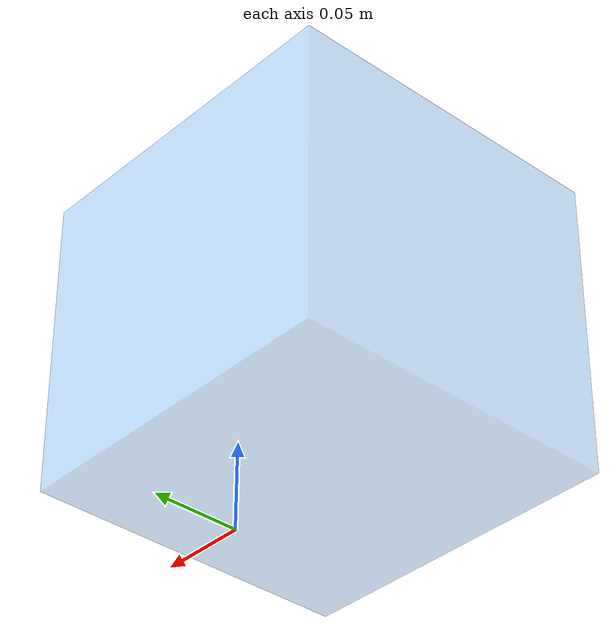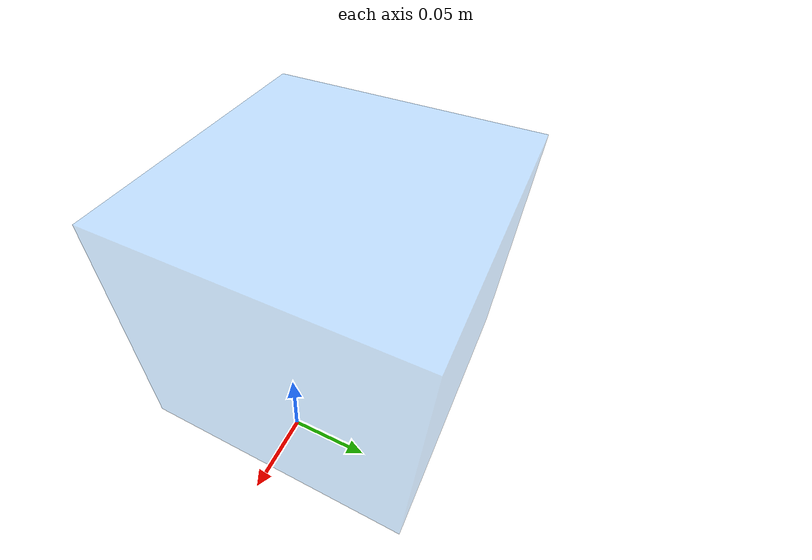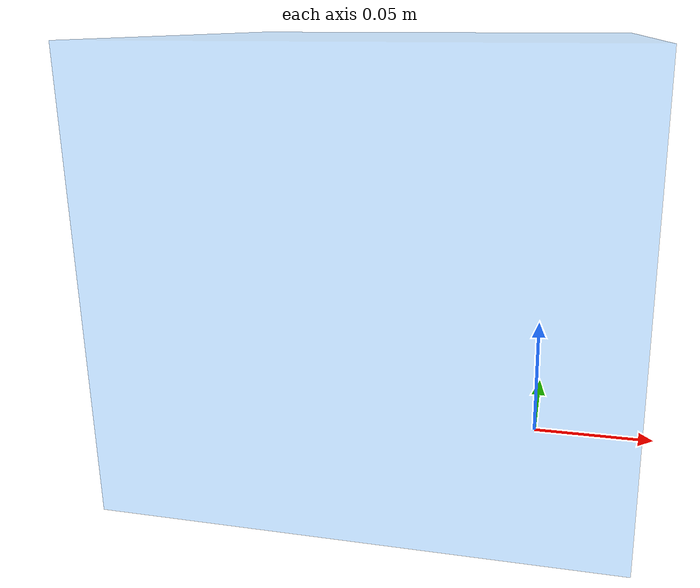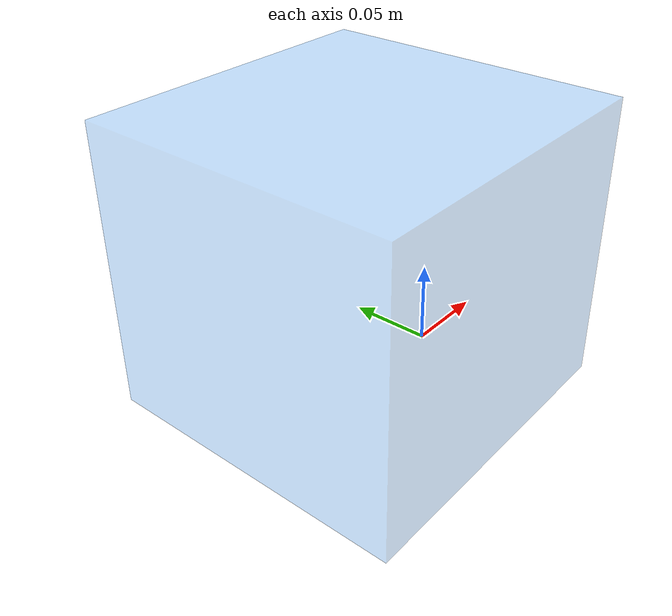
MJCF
<mujoco model="innate_sim">

  <option timestep="0.005" gravity="0 0 -9.81"/>

  <default>
    <default class="collision">
      <geom group="3" type="mesh" friction="0.9 0.01 0.001" condim="6" margin="0.03" solref="0.01 1"
            contype="0" conaffinity="0"/>
    </default>
  </default>

  <asset>
    <mesh file="apartment_collision_0.obj"/>
    <mesh file="apartment_collision_1.obj"/>
    <mesh file="apartment_collision_2.obj"/>
    <mesh file="apartment_collision_3.obj"/>
    <mesh file="apartment_collision_4.obj"/>
    <mesh file="apartment_collision_5.obj"/>
    <mesh file="apartment_collision_6.obj"/>
    <mesh file="apartment_collision_7.obj"/>
    <mesh file="apartment_collision_8.obj"/>
    <mesh file="apartment_collision_9.obj"/>
    <mesh file="apartment_collision_10.obj"/>
    <mesh file="apartment_collision_11.obj"/>
    <mesh file="apartment_collision_12.obj"/>
    <mesh file="apartment_collision_13.obj"/>
    <mesh file="apartment_collision_14.obj"/>
    <mesh file="apartment_collision_15.obj"/>
    <mesh file="apartment_collision_16.obj"/>
    <mesh file="apartment_collision_17.obj"/>
    <mesh file="apartment_collision_18.obj"/>
    <mesh file="apartment_collision_19.obj"/>
    <mesh file="apartment_collision_20.obj"/>
    <mesh file="apartment_collision_21.obj"/>
    <mesh file="apartment_collision_22.obj"/>
    <mesh file="apartment_collision_23.obj"/>
    <mesh file="apartment_collision_24.obj"/>
    <mesh file="apartment_collision_25.obj"/>
    <mesh file="apartment_collision_26.obj"/>
    <mesh file="apartment_collision_27.obj"/>
    <mesh file="apartment_collision_28.obj"/>
    <mesh file="apartment_collision_29.obj"/>
    <mesh file="apartment_collision_30.obj"/>
    <mesh file="apartment_collision_31.obj"/>
    <mesh file="apartment_collision_32.obj"/>
    <mesh file="apartment_collision_33.obj"/>
    <mesh file="apartment_collision_34.obj"/>
    <mesh file="apartment_collision_35.obj"/>
    <mesh file="apartment_collision_36.obj"/>
    <mesh file="apartment_collision_37.obj"/>
    <mesh file="apartment_collision_38.obj"/>
    <mesh file="apartment_collision_39.obj"/>
    <mesh file="apartment_collision_40.obj"/>
    <mesh file="apartment_collision_41.obj"/>
    <mesh file="apartment_collision_42.obj"/>
    <mesh file="apartment_collision_43.obj"/>
    <mesh file="apartment_collision_44.obj"/>
    <mesh file="apartment_collision_45.obj"/>
    <mesh file="apartment_collision_46.obj"/>
    <mesh file="apartment_collision_47.obj"/>
    <mesh file="apartment_collision_48.obj"/>
    <mesh file="apartment_collision_49.obj"/>
    <mesh file="apartment_collision_50.obj"/>
    <mesh file="apartment_collision_51.obj"/>
    <mesh file="apartment_collision_52.obj"/>
    <mesh file="apartment_collision_53.obj"/>
    <mesh file="apartment_collision_54.obj"/>
    <mesh file="apartment_collision_55.obj"/>
    <mesh file="apartment_collision_56.obj"/>
    <mesh file="apartment_collision_57.obj"/>
    <mesh file="apartment_collision_58.obj"/>
    <mesh file="apartment_collision_59.obj"/>
    <mesh file="apartment_collision_60.obj"/>
    <mesh file="apartment_collision_61.obj"/>
    <mesh file="apartment_collision_62.obj"/>
    <mesh file="apartment_collision_63.obj"/>
    <mesh file="apartment_collision_64.obj"/>
    <mesh file="apartment_collision_65.obj"/>
    <mesh file="apartment_collision_66.obj"/>
    <mesh file="apartment_collision_67.obj"/>
    <mesh file="apartment_collision_68.obj"/>
    <mesh file="apartment_collision_69.obj"/>
    <mesh file="apartment_collision_70.obj"/>
    <mesh file="apartment_collision_71.obj"/>
    <mesh file="apartment_collision_72.obj"/>
    <mesh file="apartment_collision_73.obj"/>
    <mesh file="apartment_collision_74.obj"/>
    <mesh file="apartment_collision_75.obj"/>
    <mesh file="apartment_collision_76.obj"/>
    <mesh file="apartment_collision_77.obj"/>
    <mesh file="apartment_collision_78.obj"/>
    <mesh file="apartment_collision_79.obj"/>
    <mesh file="apartment_collision_80.obj"/>
    <mesh file="apartment_collision_81.obj"/>
    <mesh file="apartment_collision_82.obj"/>
    <mesh file="apartment_collision_83.obj"/>
    <mesh file="apartment_collision_84.obj"/>
    <mesh file="apartment_collision_85.obj"/>
    <mesh file="apartment_collision_86.obj"/>
    <mesh file="apartment_collision_87.obj"/>
    <mesh file="apartment_collision_88.obj"/>
    <mesh file="apartment_collision_89.obj"/>
    <mesh file="apartment_collision_90.obj"/>
    <mesh file="apartment_collision_91.obj"/>
    <mesh file="apartment_collision_92.obj"/>
    <mesh file="apartment_collision_93.obj"/>
    <mesh file="apartment_collision_94.obj"/>
    <mesh file="apartment_collision_95.obj"/>
    <mesh file="apartment_collision_96.obj"/>
    <mesh file="apartment_collision_97.obj"/>
    <mesh file="apartment_collision_98.obj"/>
    <mesh file="apartment_collision_99.obj"/>
    <mesh file="apartment_collision_100.obj"/>
    <mesh file="apartment_collision_101.obj"/>
    <mesh file="apartment_collision_102.obj"/>
    <mesh file="apartment_collision_103.obj"/>
    <mesh file="apartment_collision_104.obj"/>
    <mesh file="apartment_collision_105.obj"/>
    <mesh file="apartment_collision_106.obj"/>
    <mesh file="apartment_collision_107.obj"/>
    <mesh file="apartment_collision_108.obj"/>
    <mesh file="apartment_collision_109.obj"/>
    <mesh file="apartment_collision_110.obj"/>
    <mesh file="apartment_collision_111.obj"/>
  </asset>

  <worldbody>
    <!-- Stand-in floor while the apartment collision mesh is disabled above
         (see the TEMPORARY note on the collision default class). -->
    <geom name="ground" type="plane" size="10 10 0.1" friction="0.9 0.01 0.001" rgba="0.5 0.5 0.5 0"/>

    <body name="apartment" quat="0.7071068 0.7071068 0 0">
      <geom mesh="apartment_collision_0" class="collision"/>
      <geom mesh="apartment_collision_1" class="collision"/>
      <geom mesh="apartment_collision_2" class="collision"/>
      <geom mesh="apartment_collision_3" class="collision"/>
      <geom mesh="apartment_collision_4" class="collision"/>
      <geom mesh="apartment_collision_5" class="collision"/>
      <geom mesh="apartment_collision_6" class="collision"/>
      <geom mesh="apartment_collision_7" class="collision"/>
      <geom mesh="apartment_collision_8" class="collision"/>
      <geom mesh="apartment_collision_9" class="collision"/>
      <geom mesh="apartment_collision_10" class="collision"/>
      <geom mesh="apartment_collision_11" class="collision"/>
      <geom mesh="apartment_collision_12" class="collision"/>
      <geom mesh="apartment_collision_13" class="collision"/>
      <geom mesh="apartment_collision_14" class="collision"/>
      <geom mesh="apartment_collision_15" class="collision"/>
      <geom mesh="apartment_collision_16" class="collision"/>
      <geom mesh="apartment_collision_17" class="collision"/>
      <geom mesh="apartment_collision_18" class="collision"/>
      <geom mesh="apartment_collision_19" class="collision"/>
      <geom mesh="apartment_collision_20" class="collision"/>
      <geom mesh="apartment_collision_21" class="collision"/>
      <geom mesh="apartment_collision_22" class="collision"/>
      <geom mesh="apartment_collision_23" class="collision"/>
      <geom mesh="apartment_collision_24" class="collision"/>
      <geom mesh="apartment_collision_25" class="collision"/>
      <geom mesh="apartment_collision_26" class="collision"/>
      <geom mesh="apartment_collision_27" class="collision"/>
      <geom mesh="apartment_collision_28" class="collision"/>
      <geom mesh="apartment_collision_29" class="collision"/>
      <geom mesh="apartment_collision_30" class="collision"/>
      <geom mesh="apartment_collision_31" class="collision"/>
      <geom mesh="apartment_collision_32" class="collision"/>
      <geom mesh="apartment_collision_33" class="collision"/>
      <geom mesh="apartment_collision_34" class="collision"/>
      <geom mesh="apartment_collision_35" class="collision"/>
      <geom mesh="apartment_collision_36" class="collision"/>
      <geom mesh="apartment_collision_37" class="collision"/>
      <geom mesh="apartment_collision_38" class="collision"/>
      <geom mesh="apartment_collision_39" class="collision"/>
      <geom mesh="apartment_collision_40" class="collision"/>
      <geom mesh="apartment_collision_41" class="collision"/>
      <geom mesh="apartment_collision_42" class="collision"/>
      <geom mesh="apartment_collision_43" class="collision"/>
      <geom mesh="apartment_collision_44" class="collision"/>
      <geom mesh="apartment_collision_45" class="collision"/>
      <geom mesh="apartment_collision_46" class="collision"/>
      <geom mesh="apartment_collision_47" class="collision"/>
      <geom mesh="apartment_collision_48" class="collision"/>
      <geom mesh="apartment_collision_49" class="collision"/>
      <geom mesh="apartment_collision_50" class="collision"/>
      <geom mesh="apartment_collision_51" class="collision"/>
      <geom mesh="apartment_collision_52" class="collision"/>
      <geom mesh="apartment_collision_53" class="collision"/>
      <geom mesh="apartment_collision_54" class="collision"/>
      <geom mesh="apartment_collision_55" class="collision"/>
      <geom mesh="apartment_collision_56" class="collision"/>
      <geom mesh="apartment_collision_57" class="collision"/>
      <geom mesh="apartment_collision_58" class="collision"/>
      <geom mesh="apartment_collision_59" class="collision"/>
      <geom mesh="apartment_collision_60" class="collision"/>
      <geom mesh="apartment_collision_61" class="collision"/>
      <geom mesh="apartment_collision_62" class="collision"/>
      <geom mesh="apartment_collision_63" class="collision"/>
      <geom mesh="apartment_collision_64" class="collision"/>
      <geom mesh="apartment_collision_65" class="collision"/>
      <geom mesh="apartment_collision_66" class="collision"/>
      <geom mesh="apartment_collision_67" class="collision"/>
      <geom mesh="apartment_collision_68" class="collision"/>
      <geom mesh="apartment_collision_69" class="collision"/>
      <geom mesh="apartment_collision_70" class="collision"/>
      <geom mesh="apartment_collision_71" class="collision"/>
      <geom mesh="apartment_collision_72" class="collision"/>
      <geom mesh="apartment_collision_73" class="collision"/>
      <geom mesh="apartment_collision_74" class="collision"/>
      <geom mesh="apartment_collision_75" class="collision"/>
      <geom mesh="apartment_collision_76" class="collision"/>
      <geom mesh="apartment_collision_77" class="collision"/>
      <geom mesh="apartment_collision_78" class="collision"/>
      <geom mesh="apartment_collision_79" class="collision"/>
      <geom mesh="apartment_collision_80" class="collision"/>
      <geom mesh="apartment_collision_81" class="collision"/>
      <geom mesh="apartment_collision_82" class="collision"/>
      <geom mesh="apartment_collision_83" class="collision"/>
      <geom mesh="apartment_collision_84" class="collision"/>
      <geom mesh="apartment_collision_85" class="collision"/>
      <geom mesh="apartment_collision_86" class="collision"/>
      <geom mesh="apartment_collision_87" class="collision"/>
      <geom mesh="apartment_collision_88" class="collision"/>
      <geom mesh="apartment_collision_89" class="collision"/>
      <geom mesh="apartment_collision_90" class="collision"/>
      <geom mesh="apartment_collision_91" class="collision"/>
      <geom mesh="apartment_collision_92" class="collision"/>
      <geom mesh="apartment_collision_93" class="collision"/>
      <geom mesh="apartment_collision_94" class="collision"/>
      <geom mesh="apartment_collision_95" class="collision"/>
      <geom mesh="apartment_collision_96" class="collision"/>
      <geom mesh="apartment_collision_97" class="collision"/>
      <geom mesh="apartment_collision_98" class="collision"/>
      <geom mesh="apartment_collision_99" class="collision"/>
      <geom mesh="apartment_collision_100" class="collision"/>
      <geom mesh="apartment_collision_101" class="collision"/>
      <geom mesh="apartment_collision_102" class="collision"/>
      <geom mesh="apartment_collision_103" class="collision"/>
      <geom mesh="apartment_collision_104" class="collision"/>
      <geom mesh="apartment_collision_105" class="collision"/>
      <geom mesh="apartment_collision_106" class="collision"/>
      <geom mesh="apartment_collision_107" class="collision"/>
      <geom mesh="apartment_collision_108" class="collision"/>
      <geom mesh="apartment_collision_109" class="collision"/>
      <geom mesh="apartment_collision_110" class="collision"/>
      <geom mesh="apartment_collision_111" class="collision"/>
    </body>

    <!-- Free-floating collision box standing in for the MARS base_link
         (box size/offset taken directly from mars.urdf's base_link
         collision). Mass/inertia are placeholders -- tune by feel. -->
    <body name="robot_base" pos="0 0 0">
      <freejoint name="base_free"/>
      <inertial pos="-0.0587 0 0.0838" mass="3.0" diaginertia="0.03 0.03 0.02"/>
      <geom name="base_collision" type="box" size="0.0939 0.091 0.0838" pos="-0.0587 0 0.0838"
            friction="0.9 0.01 0.001" rgba="0.2 0.6 1 0.3"/>
    </body>
  </worldbody>
</mujoco>
